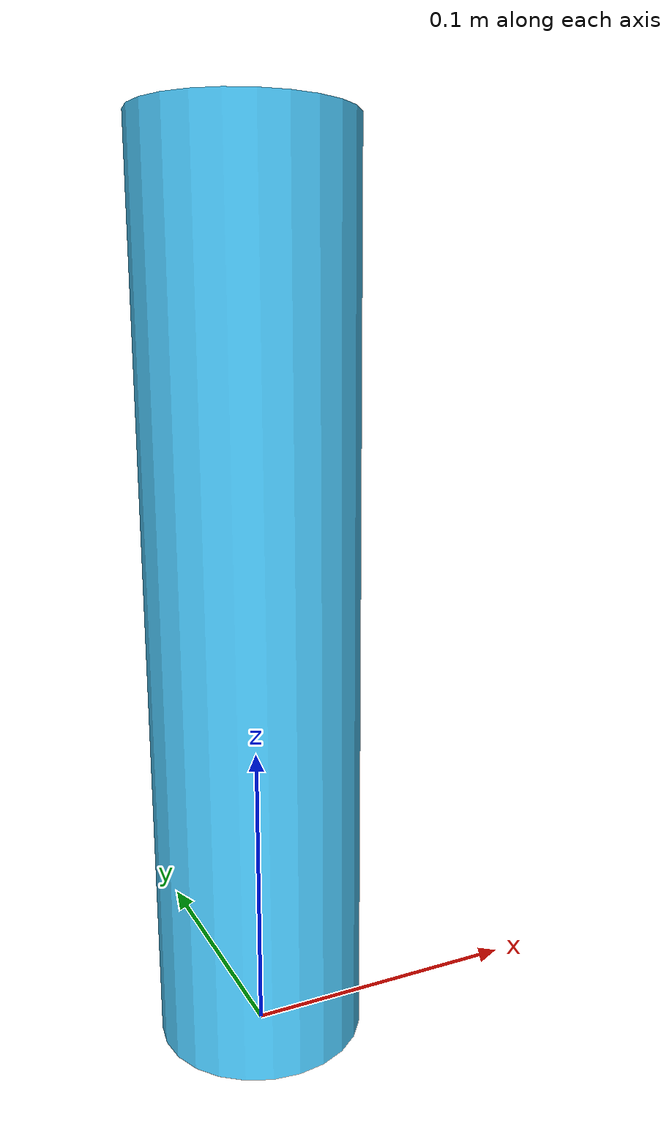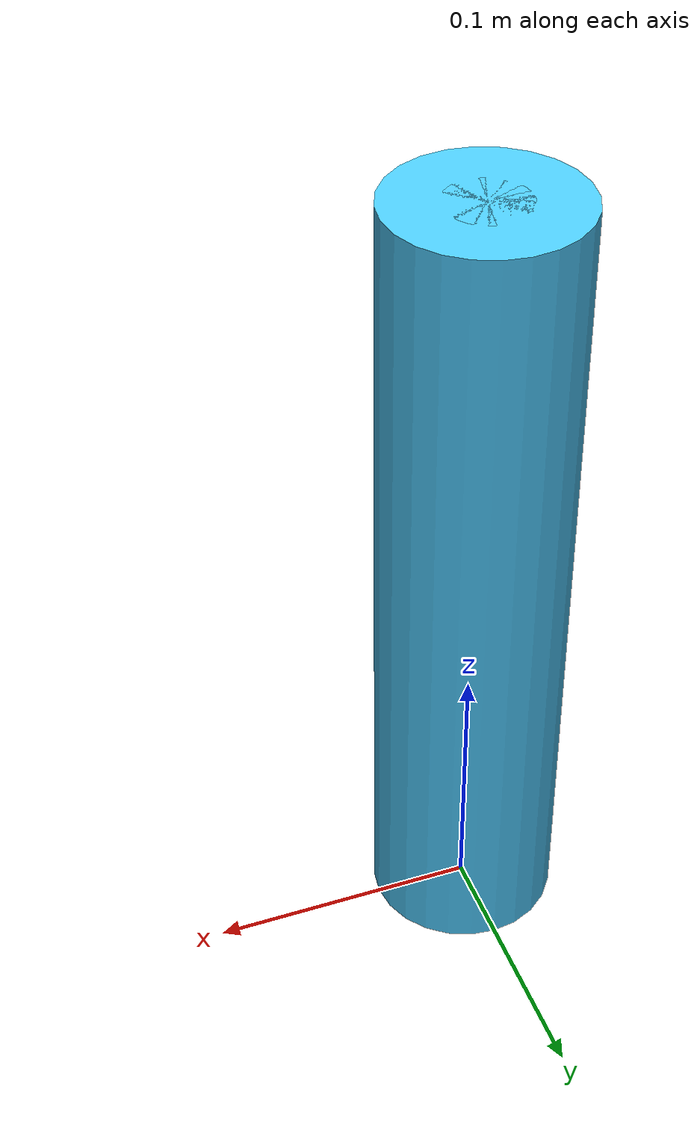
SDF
<?xml version="1.0" ?>
<sdf version="1.6">
  <model name="bottle">
    <static>false</static>

    <!-- Bottle Body -->
    <link name="bottle_body">
      <pose>0 0 0.15 0 0 0</pose>

      <collision name="collision">
        <geometry>
          <cylinder>
            <radius>0.035</radius>
            <length>0.3</length>
          </cylinder>
        </geometry>
      </collision>

      <visual name="visual">
        <geometry>
          <cylinder>
            <radius>0.035</radius>
            <length>0.3</length>
          </cylinder>
        </geometry>
        <material>
          <ambient>0.2 0.7 0.9 1</ambient>
          <diffuse>0.3 0.8 1.0 1</diffuse>
        </material>
      </visual>

      <inertial>
        <mass>0.1</mass>
        <inertia>
          <ixx>0.0001</ixx>
          <iyy>0.0001</iyy>
          <izz>0.0001</izz>
          <ixy>0.0</ixy>
          <ixz>0.0</ixz>
          <iyz>0.0</iyz>
        </inertia>
      </inertial>
    </link>

    <!-- Bottle Neck -->
    <link name="bottle_neck">
      <pose>0 0 0.275 0 0 0</pose>

      <collision name="collision">
        <geometry>
          <cylinder>
            <radius>0.015</radius>
            <length>0.05</length>
          </cylinder>
        </geometry>
      </collision>

      <visual name="visual">
        <geometry>
          <cylinder>
            <radius>0.015</radius>
            <length>0.05</length>
          </cylinder>
        </geometry>
        <material>
          <ambient>0.2 0.7 0.9 1</ambient>
          <diffuse>0.3 0.8 1.0 1</diffuse>
        </material>
      </visual>

      <inertial>
        <mass>0.05</mass>
        <inertia>
          <ixx>0.00005</ixx>
          <iyy>0.00005</iyy>
          <izz>0.00005</izz>
          <ixy>0.0</ixy>
          <ixz>0.0</ixz>
          <iyz>0.0</iyz>
        </inertia>
      </inertial>
    </link>

    <!-- Joint connecting neck to body -->
    <joint name="neck_to_body" type="fixed">
      <parent>bottle_body</parent>
      <child>bottle_neck</child>
    </joint>
  </model>
</sdf>
